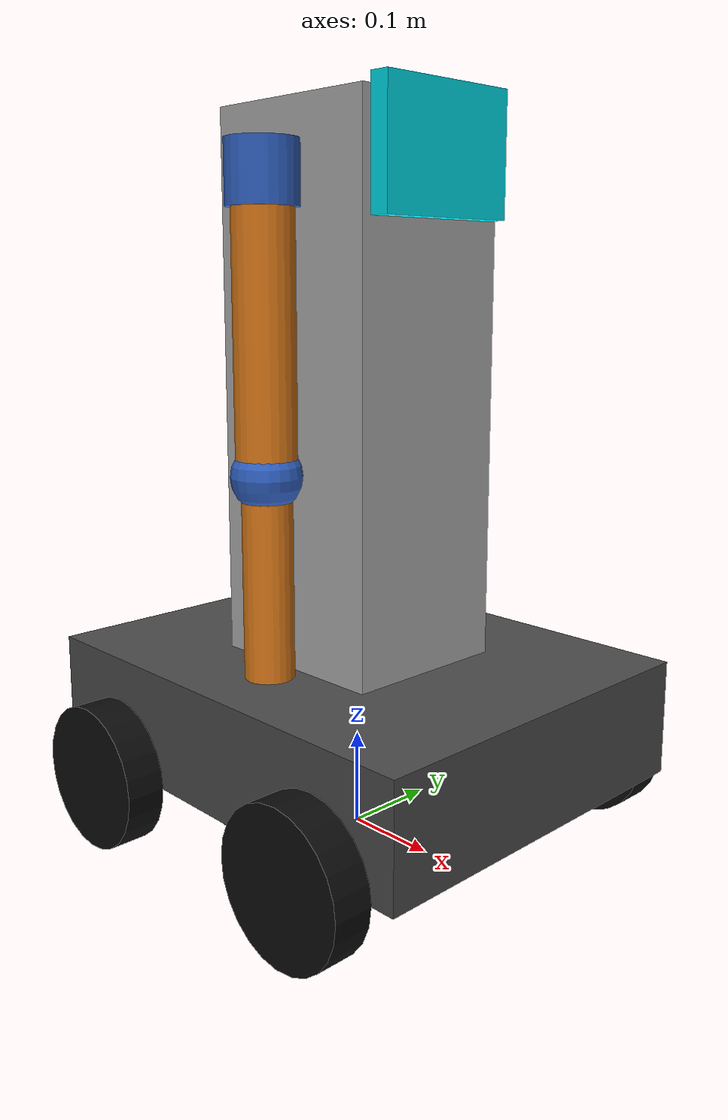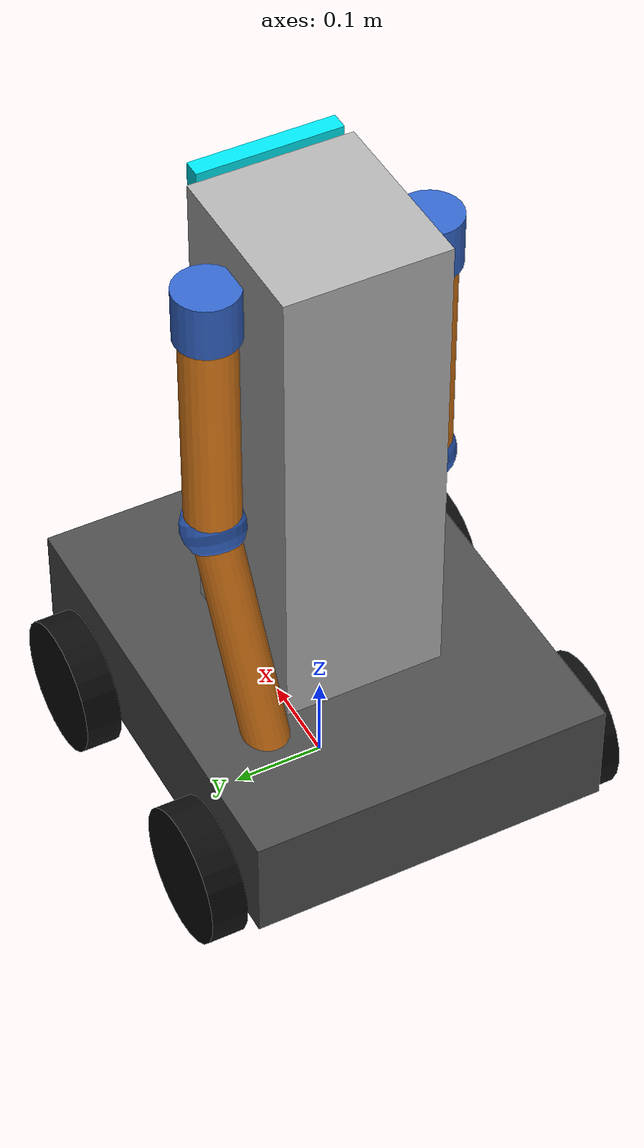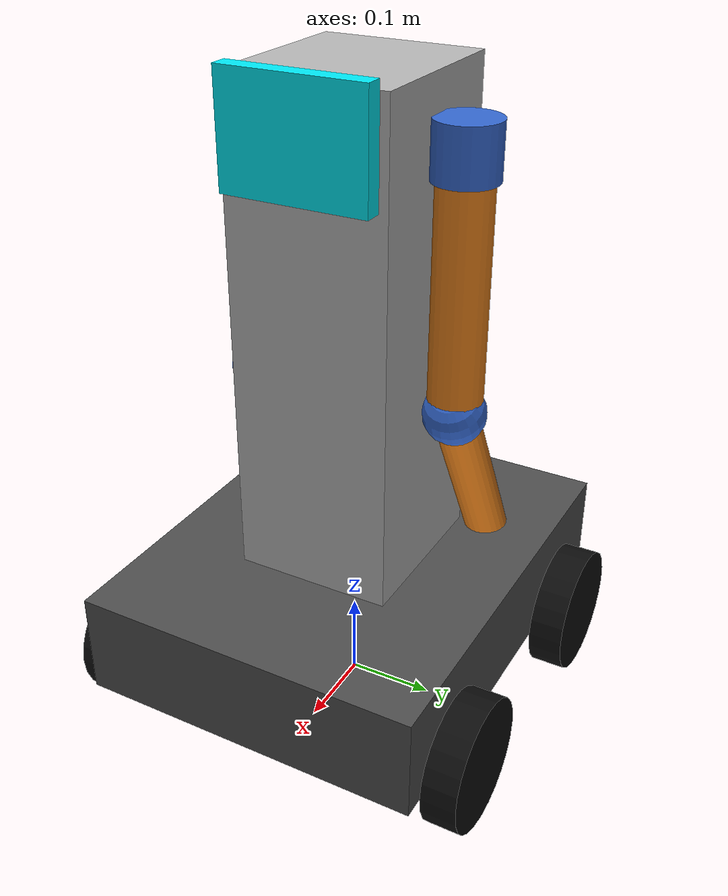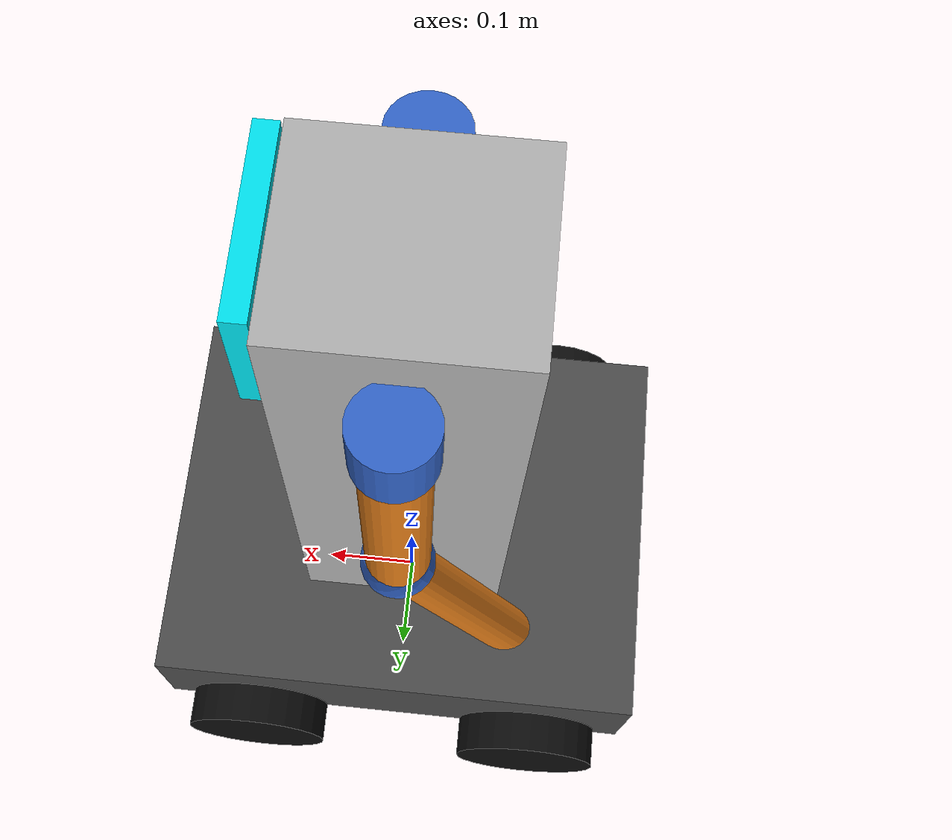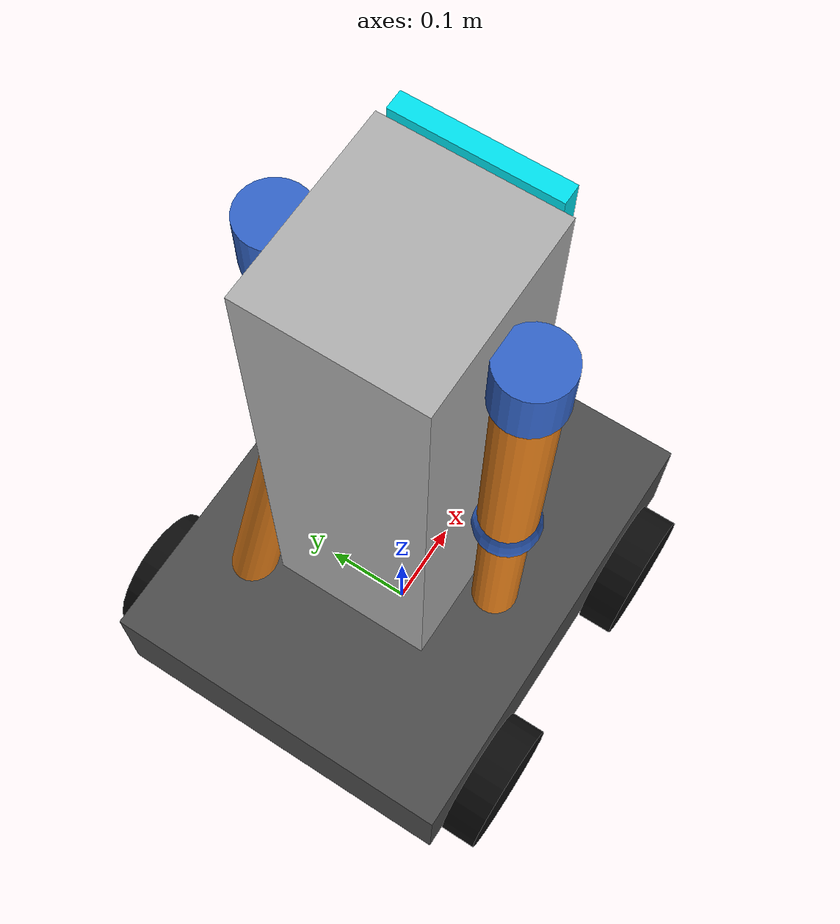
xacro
<?xml version ="1.0"?>
<robot name="tidying_robot" xmlns:xacro="http://www.ros.org/wiki/xacro">

    <!-- Define materials -->
    <material name="dark_grey">
        <color rgba="0.3 0.3 0.3 1.0"/>
    </material>
    <material name="light_grey">
        <color rgba="0.7 0.7 0.7 1.0"/>
    </material>
    <material name="blue">
        <color rgba="0.2 0.4 0.8 1.0"/>
    </material>
    <material name="black">
        <color rgba="0.05 0.05 0.05 1.0"/>
    </material>
    <material name="orange">
        <color rgba="0.9 0.5 0.1 1.0"/>
    </material>
    <material name="white">
        <color rgba="0.95 0.95 0.95 1.0"/>
    </material>
    <material name="cyan_glow">
        <color rgba="0.0 0.9 0.95 1.0"/>
    </material>
    <material name="red">
        <color rgba="0.8 0.1 0.1 1.0"/>
    </material>

    <!-- Base Link -->
    <link name="base_link">
    <visual>
      <geometry>
        <box size="0.50 0.40 0.12"/>
      </geometry>
      <origin xyz="0 0 0.06" rpy="0 0 0"/>
      <material name="dark_grey"/>
    </visual>
    <collision>
      <geometry>
        <box size="0.50 0.40 0.12"/>
      </geometry>
      <origin xyz="0 0 0.06" rpy="0 0 0"/>
    </collision>
    <inertial>
      <mass value="12.0"/>
      <origin xyz="0 0 0.06" rpy="0 0 0"/>
      <!-- Ixx=1/12*m*(y^2+z^2), Iyy=1/12*m*(x^2+z^2), Izz=1/12*m*(x^2+y^2) -->
      <inertia ixx="0.1744" iyy="0.2644" izz="0.4100"
               ixy="0" ixz="0" iyz="0"/>
        </inertial>
    </link>

    <!-- Dummy base_footprint for nav stack compatibility -->
    <link name="base_footprint"/>
    <joint name="base_footprint_joint" type="fixed">
        <parent link="base_footprint"/>
        <child link="base_link"/>
        <origin xyz="0 0 0.075" rpy="0 0 0"/>
    </joint>

    <!-- ==Wheels== -->
    <!-- Front Left Wheel -->
    <link name="front_left_wheel">
        <visual>
        <geometry>
            <cylinder radius="0.075" length="0.04"/>
        </geometry>
        <material name="black"/>
        </visual>
        <collision>
        <geometry>
            <cylinder radius="0.075" length="0.04"/>
        </geometry>
        </collision>
        <inertial>
        <mass value="0.8"/>
        <inertia ixx="0.001231" iyy="0.001231" izz="0.002250"
                ixy="0" ixz="0" iyz="0"/>
        </inertial>
    </link>
    <joint name="front_left_wheel_joint" type="continuous">
        <parent link="base_link"/>
        <child link="front_left_wheel"/>
        <!-- Wheel center at x=+0.15 (front), y=+0.22 (left), z=0 (ground contact) -->
        <origin xyz="0.15 0.22 0.0" rpy="-1.5708 0 0"/>
        <axis xyz="0 0 1"/>
        <dynamics damping="0.1" friction="0.05"/>
    </joint>

    <!-- Front-Right Wheel -->
    <link name="front_right_wheel">
        <visual>
        <geometry>
            <cylinder radius="0.075" length="0.04"/>
        </geometry>
        <material name="black"/>
        </visual>
        <collision>
        <geometry>
            <cylinder radius="0.075" length="0.04"/>
        </geometry>
        </collision>
        <inertial>
        <mass value="0.8"/>
        <inertia ixx="0.001231" iyy="0.001231" izz="0.002250"
                ixy="0" ixz="0" iyz="0"/>
        </inertial>
    </link>
    <joint name="front_right_wheel_joint" type="continuous">
        <parent link="base_link"/>
        <child link="front_right_wheel"/>
        <origin xyz="0.15 -0.22 0.0" rpy="-1.5708 0 0"/>
        <axis xyz="0 0 1"/>
        <dynamics damping="0.1" friction="0.05"/>
    </joint>

    <!-- Rear-Left Wheel -->
    <link name="rear_left_wheel">
        <visual>
        <geometry>
            <cylinder radius="0.075" length="0.04"/>
        </geometry>
        <material name="black"/>
        </visual>
        <collision>
        <geometry>
            <cylinder radius="0.075" length="0.04"/>
        </geometry>
        </collision>
        <inertial>
        <mass value="0.8"/>
        <inertia ixx="0.001231" iyy="0.001231" izz="0.002250"
                ixy="0" ixz="0" iyz="0"/>
        </inertial>
    </link>
    <joint name="rear_left_wheel_joint" type="continuous">
        <parent link="base_link"/>
        <child link="rear_left_wheel"/>
        <origin xyz="-0.15 0.22 0.0" rpy="-1.5708 0 0"/>
        <axis xyz="0 0 1"/>
        <dynamics damping="0.1" friction="0.05"/>
    </joint>

    <!-- Rear-Right Wheel -->
    <link name="rear_right_wheel">
        <visual>
        <geometry>
            <cylinder radius="0.075" length="0.04"/>
        </geometry>
        <material name="black"/>
        </visual>
        <collision>
        <geometry>
            <cylinder radius="0.075" length="0.04"/>
        </geometry>
        </collision>
        <inertial>
        <mass value="0.8"/>
        <inertia ixx="0.001231" iyy="0.001231" izz="0.002250"
                ixy="0" ixz="0" iyz="0"/>
        </inertial>
    </link>
    <joint name="rear_right_wheel_joint" type="continuous">
        <parent link="base_link"/>
        <child link="rear_right_wheel"/>
        <origin xyz="-0.15 -0.22 0.0" rpy="-1.5708 0 0"/>
        <axis xyz="0 0 1"/>
        <dynamics damping="0.1" friction="0.05"/>
    </joint>

    <!--=======TORSO(vertical column: 0.20 x 0.18 x 0.55, Sits on top of base. Mass ~5 kg=====-->
    <link name="torso_link">
    <visual>
      <geometry>
        <box size="0.20 0.18 0.55"/>
      </geometry>
      <origin xyz="0 0 0.275" rpy="0 0 0"/>
      <material name="light_grey"/>
    </visual>
    <collision>
      <geometry>
        <box size="0.20 0.18 0.55"/>
      </geometry>
      <origin xyz="0 0 0.275" rpy="0 0 0"/>
    </collision>
    <inertial>
      <mass value="5.0"/>
      <origin xyz="0 0 0.275" rpy="0 0 0"/>
      <inertia ixx="0.1394" iyy="0.1427" izz="0.0302"
               ixy="0" ixz="0" iyz="0"/>
    </inertial>
    </link>
    <joint name="torso_joint" type="fixed">
        <parent link="base_link"/>
        <child link="torso_link"/>
        <origin xyz="0 0 0.12" rpy="0 0 0"/>
    </joint>
    <!--===HEAD / LED FACE PANEL===-->
    <link name="head_link">
    <visual>
      <geometry>
        <box size="0.02 0.16 0.12"/>
      </geometry>
      <origin xyz="0 0 0.0" rpy="0 0 0"/>
      <material name="cyan_glow"/>
    </visual>
    <collision>
      <geometry>
        <box size="0.02 0.16 0.12"/>
      </geometry>
      <origin xyz="0 0 0.0" rpy="0 0 0"/>
    </collision>
    <inertial>
      <mass value="0.3"/>
      <origin xyz="0 0 0.0" rpy="0 0 0"/>
      <inertia ixx="0.001010" iyy="0.000370" izz="0.000650"
               ixy="0" ixz="0" iyz="0"/>
    </inertial>
    </link>
    <joint name="head_joint" type="fixed">
        <parent link="torso_link"/>
        <child link="head_link"/>
        <!-- Mounted on the front face of torso, at the top -->
        <origin xyz="0.11 0 0.50" rpy="0 0 0"/>
    </joint>

    <!-- ===RIGHT ARM (3 DOF) === -->
    <!-- Shoulder link -->
  <link name="right_shoulder_link">
    <visual>
      <geometry>
        <cylinder radius="0.035" length="0.06"/>
      </geometry>
      <origin xyz="0 0 0" rpy="0 0 0"/>
      <material name="blue"/>
    </visual>
    <collision>
      <geometry>
        <cylinder radius="0.035" length="0.06"/>
      </geometry>
      <origin xyz="0 0 0" rpy="0 0 0"/>
    </collision>
    <inertial>
      <mass value="0.6"/>
      <inertia ixx="0.000207" iyy="0.000207" izz="0.000368"
               ixy="0" ixz="0" iyz="0"/>
    </inertial>
  </link>
  <joint name="right_shoulder_joint" type="revolute">
    <parent link="torso_link"/>
    <child link="right_shoulder_link"/>
    <!-- Shoulder on right side, near top of torso -->
    <origin xyz="0.0 -0.12 0.48" rpy="0 0 0"/>
    <axis xyz="0 1 0"/>
    <limit lower="-2.356" upper="2.356" effort="30.0" velocity="1.5"/>
    <dynamics damping="0.5" friction="0.1"/>
  </joint>

  <!-- Upper arm -->
  <link name="right_upper_arm_link">
    <visual>
      <geometry>
        <cylinder radius="0.03" length="0.28"/>
      </geometry>
      <origin xyz="0 0 -0.14" rpy="0 0 0"/>
      <material name="orange"/>
    </visual>
    <collision>
      <geometry>
        <cylinder radius="0.03" length="0.28"/>
      </geometry>
      <origin xyz="0 0 -0.14" rpy="0 0 0"/>
    </collision>
    <inertial>
      <mass value="1.0"/>
      <origin xyz="0 0 -0.14" rpy="0 0 0"/>
      <!-- cylinder: Ixx=Iyy=1/12*m*(3r^2+h^2), Izz=1/2*m*r^2 -->
      <inertia ixx="0.006758" iyy="0.006758" izz="0.000450"
               ixy="0" ixz="0" iyz="0"/>
    </inertial>
  </link>
  <joint name="right_upper_arm_joint" type="fixed">
    <parent link="right_shoulder_link"/>
    <child link="right_upper_arm_link"/>
    <origin xyz="0 0 0" rpy="0 0 0"/>
  </joint>

  <!-- Elbow -->
  <link name="right_elbow_link">
    <visual>
      <geometry>
        <sphere radius="0.035"/>
      </geometry>
      <material name="blue"/>
    </visual>
    <collision>
      <geometry>
        <sphere radius="0.035"/>
      </geometry>
    </collision>
    <inertial>
      <mass value="0.4"/>
      <inertia ixx="0.000196" iyy="0.000196" izz="0.000196"
               ixy="0" ixz="0" iyz="0"/>
    </inertial>
  </link>
  <joint name="right_elbow_joint" type="revolute">
    <parent link="right_upper_arm_link"/>
    <child link="right_elbow_link"/>
    <origin xyz="0 0 -0.28" rpy="0 0 0"/>
    <axis xyz="0 1 0"/>
    <limit lower="-2.356" upper="0.0" effort="20.0" velocity="1.5"/>
    <dynamics damping="0.4" friction="0.08"/>
  </joint>

  <!-- Forearm -->
  <link name="right_forearm_link">
    <visual>
      <geometry>
        <cylinder radius="0.025" length="0.26"/>
      </geometry>
      <origin xyz="0 0 -0.13" rpy="0 0 0"/>
      <material name="orange"/>
    </visual>
    <collision>
      <geometry>
        <cylinder radius="0.025" length="0.26"/>
      </geometry>
      <origin xyz="0 0 -0.13" rpy="0 0 0"/>
    </collision>
    <inertial>
      <mass value="0.7"/>
      <origin xyz="0 0 -0.13" rpy="0 0 0"/>
      <inertia ixx="0.004011" iyy="0.004011" izz="0.000219"
               ixy="0" ixz="0" iyz="0"/>
    </inertial>
  </link>
  <joint name="right_forearm_joint" type="fixed">
    <parent link="right_elbow_link"/>
    <child link="right_forearm_link"/>
    <origin xyz="0 0 0" rpy="0 0 0"/>
  </joint>

  <!-- Wrist -->
  <link name="right_wrist_link">
    <visual>
      <geometry>
        <cylinder radius="0.025" length="0.03"/>
      </geometry>
      <material name="blue"/>
    </visual>
    <collision>
      <geometry>
        <cylinder radius="0.025" length="0.03"/>
      </geometry>
    </collision>
    <inertial>
      <mass value="0.2"/>
      <inertia ixx="0.0000194" iyy="0.0000194" izz="0.0000625"
               ixy="0" ixz="0" iyz="0"/>
    </inertial>
  </link>
  <joint name="right_wrist_joint" type="revolute">
    <parent link="right_forearm_link"/>
    <child link="right_wrist_link"/>
    <origin xyz="0 0 -0.26" rpy="0 0 0"/>
    <axis xyz="0 1 0"/>
    <limit lower="-1.571" upper="1.571" effort="10.0" velocity="2.0"/>
    <dynamics damping="0.3" friction="0.05"/>
  </joint>

  <!-- Gripper (parallel-jaw style, modeled as two finger pads + a palm) -->
  <!-- Palm -->
  <link name="right_gripper_palm">
    <visual>
      <geometry>
        <box size="0.06 0.08 0.02"/>
      </geometry>
      <material name="dark_grey"/>
    </visual>
    <collision>
      <geometry>
        <box size="0.06 0.08 0.02"/>
      </geometry>
    </collision>
    <inertial>
      <mass value="0.15"/>
      <inertia ixx="0.0000853" iyy="0.0000503" izz="0.000125"
               ixy="0" ixz="0" iyz="0"/>
    </inertial>
  </link>
  <joint name="right_gripper_palm_joint" type="fixed">
    <parent link="right_wrist_link"/>
    <child link="right_gripper_palm"/>
    <origin xyz="0 0 -0.025" rpy="0 0 0"/>
  </joint>

  <!-- Left Finger -->
  <link name="right_gripper_left_finger">
    <visual>
      <geometry>
        <box size="0.06 0.01 0.06"/>
      </geometry>
      <origin xyz="0 0 -0.03" rpy="0 0 0"/>
      <material name="red"/>
    </visual>
    <collision>
      <geometry>
        <box size="0.06 0.01 0.06"/>
      </geometry>
      <origin xyz="0 0 -0.03" rpy="0 0 0"/>
    </collision>
    <inertial>
      <mass value="0.05"/>
      <origin xyz="0 0 -0.03" rpy="0 0 0"/>
      <inertia ixx="0.0000175" iyy="0.0000154" izz="0.0000042"
               ixy="0" ixz="0" iyz="0"/>
    </inertial>
  </link>
  <joint name="right_gripper_left_finger_joint" type="prismatic">
    <parent link="right_gripper_palm"/>
    <child link="right_gripper_left_finger"/>
    <origin xyz="0 0.035 -0.01" rpy="0 0 0"/>
    <axis xyz="0 1 0"/>
    <limit lower="0.0" upper="0.02" effort="5.0" velocity="0.5"/>
    <dynamics damping="0.2" friction="0.05"/>
  </joint>

  <!-- Right Finger -->
  <link name="right_gripper_right_finger">
    <visual>
      <geometry>
        <box size="0.06 0.01 0.06"/>
      </geometry>
      <origin xyz="0 0 -0.03" rpy="0 0 0"/>
      <material name="red"/>
    </visual>
    <collision>
      <geometry>
        <box size="0.06 0.01 0.06"/>
      </geometry>
      <origin xyz="0 0 -0.03" rpy="0 0 0"/>
    </collision>
    <inertial>
      <mass value="0.05"/>
      <origin xyz="0 0 -0.03" rpy="0 0 0"/>
      <inertia ixx="0.0000175" iyy="0.0000154" izz="0.0000042"
               ixy="0" ixz="0" iyz="0"/>
    </inertial>
  </link>
  <joint name="right_gripper_right_finger_joint" type="prismatic">
    <parent link="right_gripper_palm"/>
    <child link="right_gripper_right_finger"/>
    <origin xyz="0 -0.035 -0.01" rpy="0 0 0"/>
    <axis xyz="0 -1 0"/>
    <limit lower="0.0" upper="0.02" effort="5.0" velocity="0.5"/>
    <dynamics damping="0.2" friction="0.05"/>
  </joint>

  <!--  LEFT ARM (cosmetic / static — mirrors right arm visually)    -->
  <link name="left_shoulder_link">
    <visual>
      <geometry>
        <cylinder radius="0.035" length="0.06"/>
      </geometry>
      <material name="blue"/>
    </visual>
    <collision>
      <geometry>
        <cylinder radius="0.035" length="0.06"/>
      </geometry>
    </collision>
    <inertial>
      <mass value="0.6"/>
      <inertia ixx="0.000207" iyy="0.000207" izz="0.000368"
               ixy="0" ixz="0" iyz="0"/>
    </inertial>
  </link>
  <joint name="left_shoulder_joint" type="fixed">
    <parent link="torso_link"/>
    <child link="left_shoulder_link"/>
    <origin xyz="0.0 0.12 0.48" rpy="0 0 0"/>
  </joint>

  <link name="left_upper_arm_link">
    <visual>
      <geometry>
        <cylinder radius="0.03" length="0.28"/>
      </geometry>
      <origin xyz="0 0 -0.14" rpy="0 0 0"/>
      <material name="orange"/>
    </visual>
    <collision>
      <geometry>
        <cylinder radius="0.03" length="0.28"/>
      </geometry>
      <origin xyz="0 0 -0.14" rpy="0 0 0"/>
    </collision>
    <inertial>
      <mass value="1.0"/>
      <origin xyz="0 0 -0.14" rpy="0 0 0"/>
      <inertia ixx="0.006758" iyy="0.006758" izz="0.000450"
               ixy="0" ixz="0" iyz="0"/>
    </inertial>
  </link>
  <joint name="left_upper_arm_joint" type="fixed">
    <parent link="left_shoulder_link"/>
    <child link="left_upper_arm_link"/>
    <origin xyz="0 0 0" rpy="0 0 0"/>
  </joint>

  <link name="left_elbow_link">
    <visual>
      <geometry>
        <sphere radius="0.035"/>
      </geometry>
      <material name="blue"/>
    </visual>
    <collision>
      <geometry>
        <sphere radius="0.035"/>
      </geometry>
    </collision>
    <inertial>
      <mass value="0.4"/>
      <inertia ixx="0.000196" iyy="0.000196" izz="0.000196"
               ixy="0" ixz="0" iyz="0"/>
    </inertial>
  </link>
  <joint name="left_elbow_joint" type="fixed">
    <parent link="left_upper_arm_link"/>
    <child link="left_elbow_link"/>
    <origin xyz="0 0 -0.28" rpy="0 0.5 0"/>
  </joint>

  <link name="left_forearm_link">
    <visual>
      <geometry>
        <cylinder radius="0.025" length="0.26"/>
      </geometry>
      <origin xyz="0 0 -0.13" rpy="0 0 0"/>
      <material name="orange"/>
    </visual>
    <collision>
      <geometry>
        <cylinder radius="0.025" length="0.26"/>
      </geometry>
      <origin xyz="0 0 -0.13" rpy="0 0 0"/>
    </collision>
    <inertial>
      <mass value="0.7"/>
      <origin xyz="0 0 -0.13" rpy="0 0 0"/>
      <inertia ixx="0.004011" iyy="0.004011" izz="0.000219"
               ixy="0" ixz="0" iyz="0"/>
    </inertial>
  </link>
  <joint name="left_forearm_joint" type="fixed">
    <parent link="left_elbow_link"/>
    <child link="left_forearm_link"/>
    <origin xyz="0 0 0" rpy="0 0 0"/>
  </joint>

  <link name="left_hand_link">
    <visual>
      <geometry>
        <box size="0.06 0.08 0.04"/>
      </geometry>
      <material name="dark_grey"/>
    </visual>
    <collision>
      <geometry>
        <box size="0.06 0.08 0.04"/>
      </geometry>
    </collision>
    <inertial>
      <mass value="0.2"/>
      <inertia ixx="0.000107" iyy="0.0000867" izz="0.000133"
               ixy="0" ixz="0" iyz="0"/>
    </inertial>
    </link>
    <joint name="left_hand_joint" type="fixed">
        <parent link="left_forearm_link"/>
        <child link="left_hand_link"/>
        <origin xyz="0 0 -0.28" rpy="0 0 0"/>
    </joint>
</robot>
